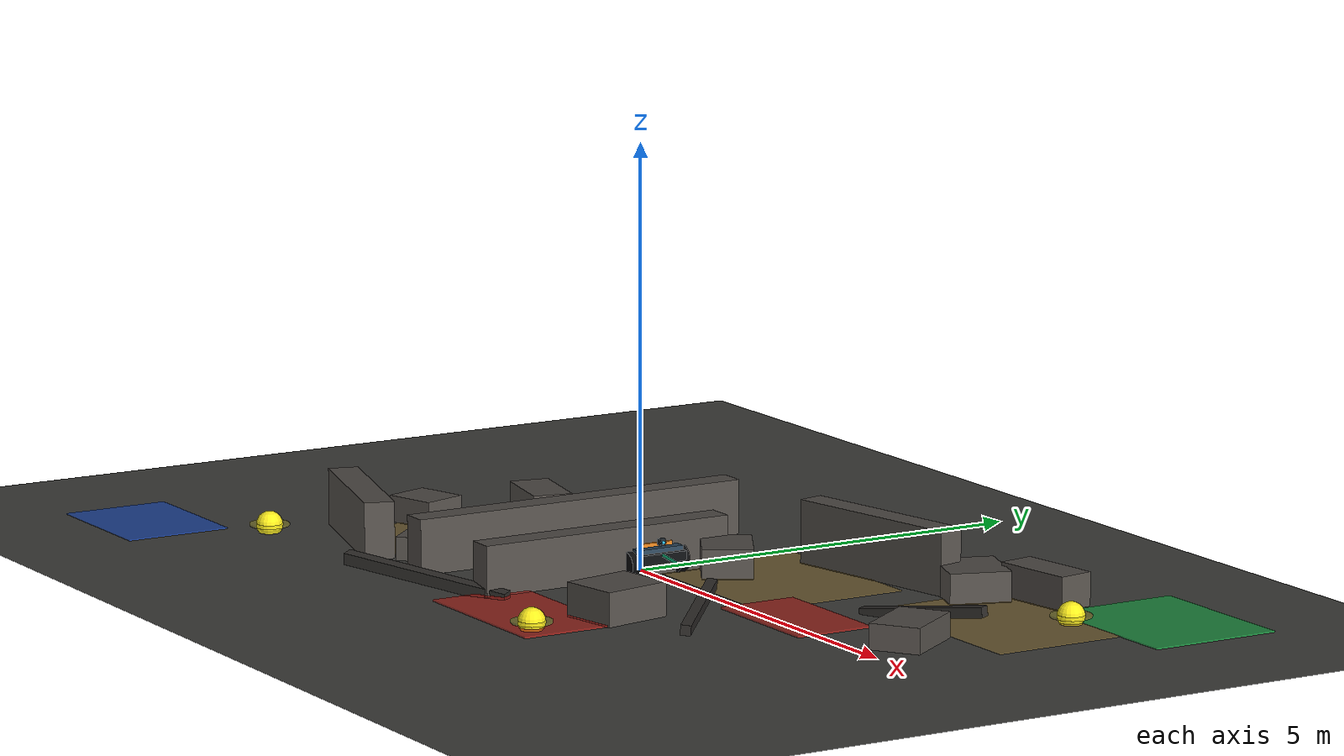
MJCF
<mujoco model="autonomous_disaster_response_rover_disaster_scene">
  <compiler angle="radian" coordinate="local"/>
  <option timestep="0.002" gravity="0 0 -9.81" iterations="80" solver="Newton"/>

  <visual>
    <global offwidth="1280" offheight="720"/>
    <quality shadowsize="2048"/>
    <map force="0.1" znear="0.01"/>
  </visual>

  <asset>
    <texture name="concrete_checker" type="2d" builtin="checker"
             rgb1="0.22 0.22 0.21" rgb2="0.28 0.28 0.27"
             width="512" height="512"/>
    <material name="concrete" texture="concrete_checker" texrepeat="9 7" reflectance="0.10"/>
    <material name="start_zone_mat" rgba="0.08 0.34 0.95 0.55"/>
    <material name="extraction_zone_mat" rgba="0.10 0.80 0.32 0.60"/>
    <material name="search_zone_mat" rgba="0.95 0.72 0.18 0.28"/>
    <material name="hazard_mat" rgba="0.95 0.12 0.08 0.52"/>
    <material name="rubble_mat" rgba="0.33 0.31 0.29 1"/>
    <material name="beam_mat" rgba="0.18 0.17 0.16 1"/>
    <material name="victim_mat" rgba="1.0 0.94 0.12 1"/>
  </asset>

  <worldbody>
    <light name="sun_key" pos="-2.5 -4.0 6.0" dir="0.35 0.55 -1" diffuse="0.95 0.92 0.86"/>
    <light name="rescue_fill" pos="4.0 2.5 3.0" dir="-0.8 -0.35 -1" diffuse="0.38 0.44 0.50"/>
    <camera name="mission_overview_camera" pos="6.8 -7.0 5.2" xyaxes="0.72 0.69 0 -0.42 0.44 0.79"/>
    <camera name="start_zone_camera" pos="-4.2 -4.2 2.0" xyaxes="0.72 -0.70 0 0.30 0.31 0.90"/>

    <geom name="concrete_floor" type="plane" size="8.0 6.0 0.05" material="concrete"
          friction="1.4 0.08 0.02" condim="4"/>

    <geom name="start_zone" type="box" pos="-5.25 -3.75 0.006" size="0.85 0.65 0.006"
          material="start_zone_mat" contype="0" conaffinity="0"/>
    <geom name="extraction_zone" type="box" pos="5.25 3.65 0.008" size="1.00 0.80 0.008"
          material="extraction_zone_mat" contype="0" conaffinity="0"/>

    <geom name="search_zone_alpha" type="box" pos="-2.50 -1.20 0.004" size="1.10 0.85 0.004"
          material="search_zone_mat" contype="0" conaffinity="0"/>
    <geom name="search_zone_bravo" type="box" pos="1.25 1.05 0.004" size="1.20 0.95 0.004"
          material="search_zone_mat" contype="0" conaffinity="0"/>
    <geom name="search_zone_charlie" type="box" pos="4.30 2.25 0.004" size="1.25 1.00 0.004"
          material="search_zone_mat" contype="0" conaffinity="0"/>

    <geom name="hazard_fire_patch" type="box" pos="1.20 -2.25 0.010" size="1.05 0.58 0.010"
          material="hazard_mat" contype="0" conaffinity="0"/>
    <geom name="hazard_chemical_spill" type="box" pos="2.95 0.25 0.010" size="0.82 0.48 0.010"
          material="hazard_mat" contype="0" conaffinity="0"/>

    <geom name="left_corridor_wall" type="box" pos="-1.20 -0.18 0.33" size="0.16 2.15 0.33"
          material="rubble_mat" friction="1.1 0.05 0.01"/>
    <geom name="right_corridor_wall" type="box" pos="0.15 -0.62 0.30" size="0.16 1.60 0.30"
          material="rubble_mat" friction="1.1 0.05 0.01"/>
    <geom name="collapsed_wall_north" type="box" pos="1.75 2.15 0.38" size="1.15 0.16 0.38"
          euler="0 0 0.20" material="rubble_mat" friction="1.1 0.05 0.01"/>
    <geom name="collapsed_wall_south" type="box" pos="-3.00 -2.05 0.34" size="1.00 0.18 0.34"
          euler="0 0 -0.28" material="rubble_mat" friction="1.1 0.05 0.01"/>

    <geom name="steel_beam_1" type="box" pos="-0.45 -2.58 0.13" size="1.05 0.07 0.07"
          euler="0.05 0.18 0.55" material="beam_mat" friction="1.2 0.05 0.01"/>
    <geom name="steel_beam_2" type="box" pos="2.35 -0.65 0.12" size="0.95 0.06 0.06"
          euler="-0.04 0.10 -0.70" material="beam_mat" friction="1.2 0.05 0.01"/>
    <geom name="steel_beam_3" type="box" pos="3.82 1.38 0.11" size="0.82 0.06 0.06"
          euler="0.08 -0.12 0.42" material="beam_mat" friction="1.2 0.05 0.01"/>

    <geom name="rubble_block_1" type="box" pos="-3.55 -0.88 0.16" size="0.32 0.28 0.16"
          euler="0 0 0.30" material="rubble_mat"/>
    <geom name="rubble_block_2" type="box" pos="-2.75 0.25 0.22" size="0.45 0.24 0.22"
          euler="0 0 -0.20" material="rubble_mat"/>
    <geom name="rubble_block_3" type="box" pos="-1.92 -1.75 0.14" size="0.28 0.34 0.14"
          euler="0 0 0.75" material="rubble_mat"/>
    <geom name="rubble_block_4" type="box" pos="0.62 0.78 0.18" size="0.38 0.30 0.18"
          euler="0 0 -0.52" material="rubble_mat"/>
    <geom name="rubble_block_5" type="box" pos="1.85 -1.42 0.20" size="0.36 0.42 0.20"
          euler="0 0 0.18" material="rubble_mat"/>
    <geom name="rubble_block_6" type="box" pos="3.05 2.55 0.18" size="0.40 0.36 0.18"
          euler="0 0 -0.33" material="rubble_mat"/>
    <geom name="rubble_block_7" type="box" pos="4.62 0.68 0.15" size="0.30 0.44 0.15"
          euler="0 0 0.60" material="rubble_mat"/>
    <geom name="rubble_block_8" type="box" pos="3.70 3.12 0.20" size="0.50 0.22 0.20"
          euler="0 0 0.15" material="rubble_mat"/>

    <body name="victim_1" pos="-4.05 -2.72 0.08">
      <geom name="victim_1_marker" type="sphere" size="0.16" material="victim_mat"
            contype="0" conaffinity="0"/>
      <geom name="victim_1_base_marker" type="cylinder" size="0.24 0.012" rgba="1.0 0.94 0.12 0.30"
            contype="0" conaffinity="0"/>
      <site name="victim_1_site" pos="0 0 0" size="0.035" rgba="1 0.94 0.12 1"/>
    </body>

    <body name="victim_2" pos="-0.85 1.28 0.08">
      <geom name="victim_2_marker" type="sphere" size="0.16" material="victim_mat"
            contype="0" conaffinity="0"/>
      <geom name="victim_2_base_marker" type="cylinder" size="0.24 0.012" rgba="1.0 0.94 0.12 0.30"
            contype="0" conaffinity="0"/>
      <site name="victim_2_site" pos="0 0 0" size="0.035" rgba="1 0.94 0.12 1"/>
    </body>

    <body name="victim_3" pos="1.85 -2.52 0.08">
      <geom name="victim_3_marker" type="sphere" size="0.16" material="victim_mat"
            contype="0" conaffinity="0"/>
      <geom name="victim_3_base_marker" type="cylinder" size="0.24 0.012" rgba="1.0 0.94 0.12 0.30"
            contype="0" conaffinity="0"/>
      <site name="victim_3_site" pos="0 0 0" size="0.035" rgba="1 0.94 0.12 1"/>
    </body>

    <body name="victim_4" pos="4.70 2.78 0.08">
      <geom name="victim_4_marker" type="sphere" size="0.16" material="victim_mat"
            contype="0" conaffinity="0"/>
      <geom name="victim_4_base_marker" type="cylinder" size="0.24 0.012" rgba="1.0 0.94 0.12 0.30"
            contype="0" conaffinity="0"/>
      <site name="victim_4_site" pos="0 0 0" size="0.035" rgba="1 0.94 0.12 1"/>
    </body>
  </worldbody>

  <include file="../models/rover_scene_include.xml"/>

  <keyframe>
    <key name="rover_start" qpos="-5.25 -3.75 0.24 0.9664 0 0 0.2571 0 0 0 0 0"/>
  </keyframe>
</mujoco>

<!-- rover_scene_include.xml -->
<mujoco>
  <default>
    <default class="rover_wheel">
      <joint type="hinge" axis="0 1 0" damping="2.0" frictionloss="0.35"/>
      <geom type="cylinder" size="0.16 0.055" mass="2.0" rgba="0.03 0.035 0.04 1"
            friction="1.6 0.04 0.01" condim="3"/>
    </default>
  </default>

  <worldbody>
    <body name="rover" pos="0 0 0.24">
      <freejoint name="rover_freejoint"/>
      <site name="rover_center_site" pos="0 0 0" size="0.015" rgba="1 1 1 0"/>

      <geom name="rover_chassis_collision" type="box" size="0.42 0.28 0.10" mass="28"
            rgba="0.18 0.22 0.26 0.18" contype="1" conaffinity="1"
            friction="1.2 0.05 0.01"/>
      <geom name="rover_chassis_visual" type="box" size="0.44 0.30 0.09" mass="0"
            pos="0 0 0.015" rgba="0.18 0.28 0.36 1" contype="0" conaffinity="0"/>
      <geom name="rover_top_plate_visual" type="box" size="0.32 0.22 0.025" mass="0"
            pos="0.02 0 0.125" rgba="0.90 0.52 0.12 1" contype="0" conaffinity="0"/>
      <geom name="rover_front_bumper" type="box" size="0.035 0.31 0.055" mass="2.0"
            pos="0.47 0 -0.005" rgba="0.05 0.06 0.07 1" friction="1.0 0.05 0.01"/>
      <geom name="rover_rear_bumper" type="box" size="0.025 0.29 0.045" mass="1.5"
            pos="-0.46 0 -0.01" rgba="0.05 0.06 0.07 1" friction="1.0 0.05 0.01"/>

      <body name="forward_lidar_mount" pos="0.46 0 0.18">
        <geom name="forward_lidar_mount_visual" type="cylinder" size="0.045 0.035" mass="0.15"
              euler="1.5708 0 0" rgba="0.10 0.13 0.15 1" contype="0" conaffinity="0"/>
        <site name="forward_lidar_site" pos="0.045 0 0" size="0.02" rgba="0.2 0.8 1 1"/>
      </body>

      <body name="left_proximity_sensor_mount" pos="0.20 0.32 0.06">
        <geom name="left_proximity_sensor_visual" type="sphere" size="0.025" mass="0.05"
              rgba="0.10 0.45 1.00 1" contype="0" conaffinity="0"/>
        <site name="left_proximity_sensor_site" pos="0 0.02 0" size="0.015" rgba="0.2 0.8 1 1"/>
      </body>

      <body name="right_proximity_sensor_mount" pos="0.20 -0.32 0.06">
        <geom name="right_proximity_sensor_visual" type="sphere" size="0.025" mass="0.05"
              rgba="0.10 0.45 1.00 1" contype="0" conaffinity="0"/>
        <site name="right_proximity_sensor_site" pos="0 -0.02 0" size="0.015" rgba="0.2 0.8 1 1"/>
      </body>

      <body name="camera_mount" pos="0.18 0 0.28">
        <geom name="camera_mount_visual" type="box" size="0.06 0.04 0.035" mass="0.1"
              rgba="0.02 0.025 0.03 1" contype="0" conaffinity="0"/>
        <site name="camera_mount_site" pos="0.08 0 0.02" size="0.018" rgba="1 0.8 0.2 1"/>
        <camera name="rover_front_camera" pos="0.08 0 0.02" xyaxes="0 -1 0 0.12 0 0.99"/>
      </body>

      <body name="rescue_deployer" pos="0.49 0 0.03">
        <joint name="rescue_deployer_joint" type="hinge" axis="0 1 0" range="0 0.65"
               damping="1.4" frictionloss="0.08" limited="true"/>
        <geom name="rescue_deployer_arm" type="capsule" fromto="0 0 0 0.34 0 -0.04"
              size="0.018" mass="0.18" rgba="0.05 0.62 0.42 1"
              contype="0" conaffinity="0"/>
        <geom name="rescue_deployer_pad" type="box" pos="0.37 0 -0.045"
              size="0.045 0.16 0.018" mass="0.12" rgba="0.05 0.78 0.52 1"
              contype="0" conaffinity="0"/>
        <site name="rescue_tool_site" pos="0.40 0 -0.045" size="0.025" rgba="0.05 1 0.64 1"/>
      </body>

      <body name="left_front_wheel" pos="0.30 0.33 -0.08">
        <joint name="left_front_wheel_joint" class="rover_wheel"/>
        <geom name="left_front_wheel_geom" class="rover_wheel" euler="1.5708 0 0"/>
      </body>

      <body name="left_rear_wheel" pos="-0.30 0.33 -0.08">
        <joint name="left_rear_wheel_joint" class="rover_wheel"/>
        <geom name="left_rear_wheel_geom" class="rover_wheel" euler="1.5708 0 0"/>
      </body>

      <body name="right_front_wheel" pos="0.30 -0.33 -0.08">
        <joint name="right_front_wheel_joint" class="rover_wheel"/>
        <geom name="right_front_wheel_geom" class="rover_wheel" euler="1.5708 0 0"/>
      </body>

      <body name="right_rear_wheel" pos="-0.30 -0.33 -0.08">
        <joint name="right_rear_wheel_joint" class="rover_wheel"/>
        <geom name="right_rear_wheel_geom" class="rover_wheel" euler="1.5708 0 0"/>
      </body>
    </body>
  </worldbody>

  <actuator>
    <velocity name="left_front_wheel_velocity" joint="left_front_wheel_joint" kv="1.6" ctrlrange="-3 3"/>
    <velocity name="left_rear_wheel_velocity" joint="left_rear_wheel_joint" kv="1.6" ctrlrange="-3 3"/>
    <velocity name="right_front_wheel_velocity" joint="right_front_wheel_joint" kv="1.6" ctrlrange="-3 3"/>
    <velocity name="right_rear_wheel_velocity" joint="right_rear_wheel_joint" kv="1.6" ctrlrange="-3 3"/>
    <position name="rescue_deployer_actuator" joint="rescue_deployer_joint" kp="3.0"
              ctrlrange="0 0.65" forcerange="-2 2"/>
  </actuator>

  <sensor>
    <framepos name="rover_pose_sensor" objtype="body" objname="rover"/>
    <framequat name="rover_orientation_sensor" objtype="body" objname="rover"/>
    <velocimeter name="rover_velocity_sensor" site="rover_center_site"/>
  </sensor>
</mujoco>
